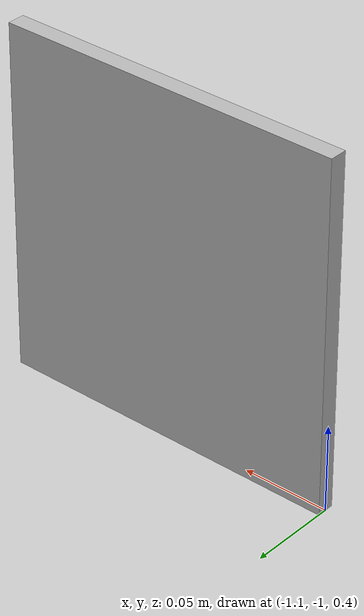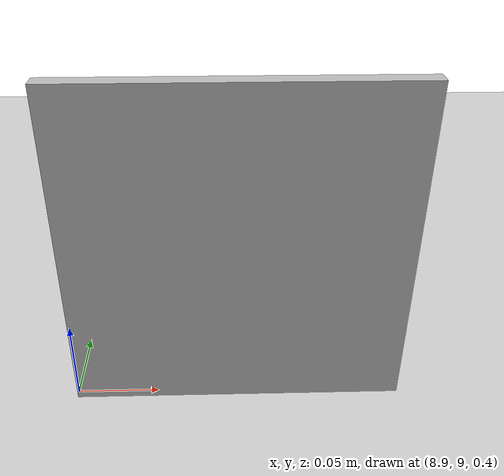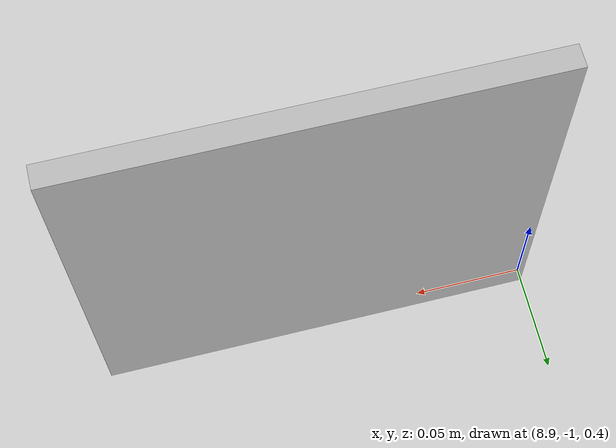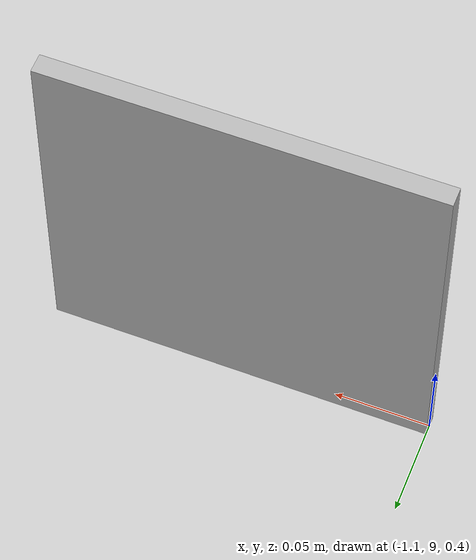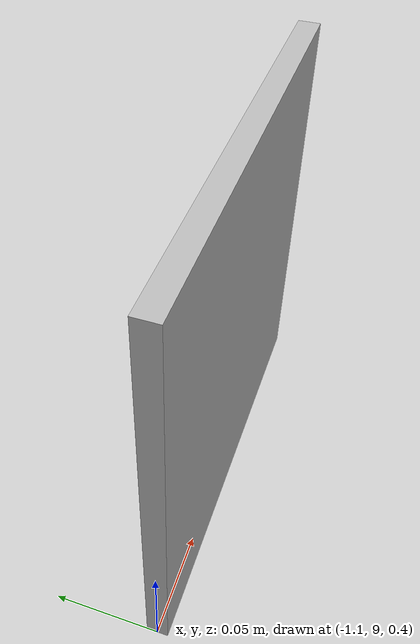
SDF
<?xml version="1.0" ?>
<sdf version="1.5">
  <world name="default">
    <!-- A global light source -->
    <include>
      <uri>model://sun</uri>
    </include>
    <!-- A ground plane -->
    <include>
      <uri>model://ground_plane</uri>
    </include>

    <model name="uwb_anchor0">
      <pose>-1 -1 0.5 0 0 0</pose>
      <static>1</static>
      <link name="link">
        <visual name="visual">
          <geometry>
            <box>
              <size>0.2 0.01 0.2</size>
            </box>
          </geometry>
        </visual>
      </link>
    </model>

    <model name="uwb_anchor1">
      <pose>9 -1 0.5 0 0 0</pose>
      <static>1</static>
      <link name="link">
        <visual name="visual">
          <geometry>
            <box>
              <size>0.2 0.01 0.2</size>
            </box>
          </geometry>
        </visual>
      </link>
    </model>

    <model name="uwb_anchor2">
      <pose>-1 9 0.5 0 0 0</pose>
      <static>1</static>
      <link name="link">
        <visual name="visual">
          <geometry>
            <box>
              <size>0.2 0.01 0.2</size>
            </box>
          </geometry>
        </visual>
      </link>
    </model>

    <model name="uwb_anchor3">
      <pose>9 9 0.5 0 0 0</pose>
      <static>1</static>
      <link name="link">
        <visual name="visual">
          <geometry>
            <box>
              <size>0.2 0.01 0.2</size>
            </box>
          </geometry>
        </visual>
      </link>
    </model>

  </world>
</sdf>
